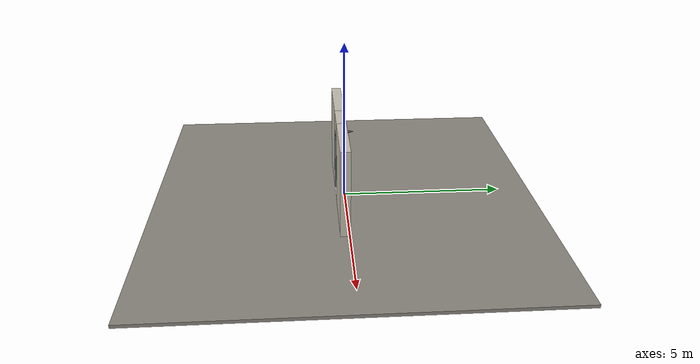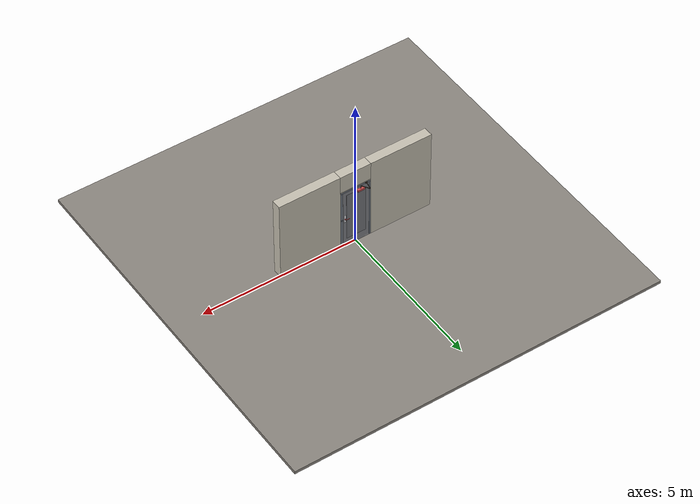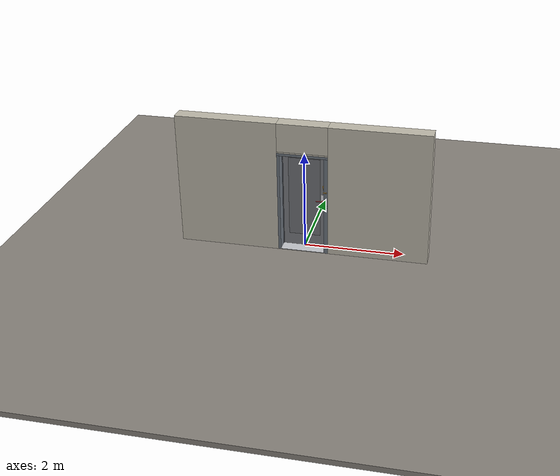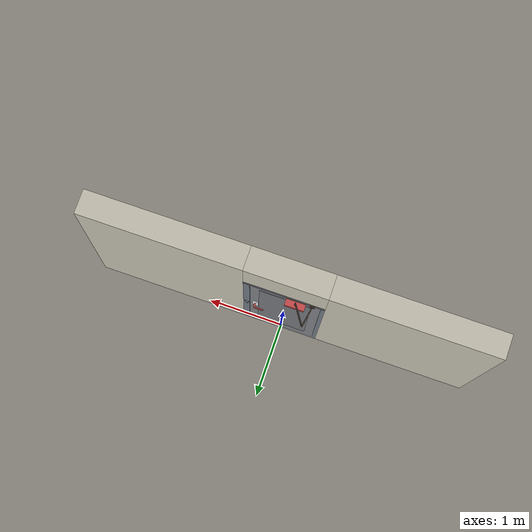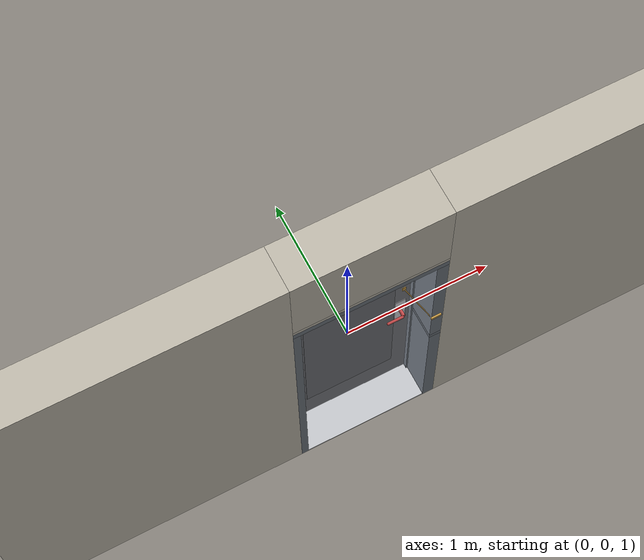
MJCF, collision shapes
<?xml version="1.0" ?>
<mujoco model="db0481_swing_single_full">
  <compiler angle="radian" meshdir="../../hardware" texturedir="../../textures" autolimits="true" inertiafromgeom="false"/>
  <option timestep="0.002" integrator="implicitfast" cone="elliptic" impratio="10" noslip_iterations="3">
    <flag multiccd="enable"/>
  </option>
  <size memory="16M"/>
  <default>
    <geom condim="4" solref="0.005 1" solimp="0.95 0.99 0.001"/>
    <joint solreflimit="0.005 1" solimplimit="0.95 0.99 0.001"/>
    <tendon solreflimit="0.005 1"/>
    <equality solref="0.002 1"/>
  </default>
  <visual>
    <headlight ambient="0.4 0.4 0.4" diffuse="0.7 0.7 0.7" specular="0.2 0.2 0.2"/>
    <quality shadowsize="4096"/>
    <map znear="0.01" zfar="60"/>
  </visual>
  <asset>
    <mesh name="card_reader_38c0bdb077" file="card_reader_38c0bdb077.obj"/>
    <mesh name="closer_body_b226fdb10b" file="closer_body_b226fdb10b.obj"/>
    <mesh name="hinge_e22b26c0c1" file="hinge_e22b26c0c1.obj"/>
    <mesh name="hinge_jamb_e1d088f8dc" file="hinge_jamb_e1d088f8dc.obj"/>
    <mesh name="lever_56c65af20a" file="lever_56c65af20a.obj"/>
    <mesh name="peephole_f829311a59" file="peephole_f829311a59.obj"/>
    <material name="mat_floor" rgba="0.55 0.53 0.5 1" specular="0.2" shininess="0.15" reflectance="0"/>
    <material name="mat_wall" rgba="0.78 0.76 0.7 1" specular="0.2" shininess="0.1" reflectance="0"/>
    <material name="mat_leaf" rgba="0.5 0.51 0.53 1" specular="0.2" shininess="0.61" reflectance="0"/>
    <material name="mat_leaf_panel" rgba="0.46 0.469 0.488 1" specular="0.2" shininess="0.61" reflectance="0"/>
    <material name="mat_hinge" rgba="0.65 0.66 0.68 1" specular="0.74" shininess="0.5" reflectance="0.36"/>
    <material name="mat_op_chrome" rgba="0.9 0.9 0.92 1" specular="0.8" shininess="0.9" reflectance="0.4"/>
    <material name="mat_trim" rgba="0.85 0.66 0.3 1" specular="0.8" shininess="0.75" reflectance="0.4"/>
    <material name="mat_reader" rgba="0.05 0.05 0.05 1" specular="0.38" shininess="0.3" reflectance="0.12"/>
    <material name="mat_bolt" rgba="0.75 0.76 0.77 1" specular="0.8" shininess="0.65" reflectance="0.4"/>
    <material name="mat_chain" rgba="0.85 0.66 0.3 1" specular="0.8" shininess="0.75" reflectance="0.4"/>
    <material name="mat_frame" rgba="0.45 0.48 0.52 1" specular="0.32" shininess="0.6" reflectance="0.08"/>
    <material name="mat_threshold" rgba="0.8 0.81 0.83 1" specular="0.8" shininess="0.6" reflectance="0.4"/>
    <material name="mat_closer" rgba="0.22 0.17 0.13 1" specular="0.8" shininess="0.6" reflectance="0.4"/>
    <material name="mat_peephole" rgba="0.85 0.66 0.3 1" specular="0.8" shininess="0.75" reflectance="0.4"/>
    <texture name="skybox" type="skybox" builtin="gradient" rgb1="0.6 0.7 0.85" rgb2="0.9 0.92 0.95" width="256" height="256"/>
  </asset>
  <worldbody>
    <light name="sun" pos="1.5 -2.5 4" dir="-0.3 0.5 -0.8" directional="true" diffuse="0.8 0.8 0.8" specular="0.3 0.3 0.3" castshadow="true"/>
    <light name="fill" pos="-1.5 2.5 3" dir="0.3 -0.5 -0.7" directional="true" diffuse="0.35 0.35 0.4" castshadow="false"/>
    <camera name="robot_view" pos="0 -2.663187 1.734312" xyaxes="1 0 0 0 0.26963 0.962964" fovy="52"/>
    <camera name="far_view" pos="0 2.421187 1.734312" xyaxes="-1 0 0 0 -0.26963 0.962964" fovy="52"/>
    <camera name="iso" pos="1.932062 -2.256438 2.141063" xyaxes="0.741536 0.670913 0 -0.242917 0.268487 0.932151" fovy="46"/>
    <camera name="detail_handle" pos="0.445 -0.877 1.32" xyaxes="0.97561 0.219512 0 -0.070934 0.315262 0.94635" fovy="38"/>
    <geom name="floor" type="box" size="6 6 0.05" pos="0 0 -0.05" material="mat_floor" group="0" contype="1" conaffinity="1" friction="0.8 0.005 0.0001" density="2400"/>
    <geom name="wall_left" type="box" size="1.007 0.15 1.35" pos="-1.493 -0.121 1.35" material="mat_wall" group="0" contype="1" conaffinity="1" friction="0.6 0.005 0.0001" density="800"/>
    <geom name="wall_right" type="box" size="0.992 0.15 1.35" pos="1.508 -0.121 1.35" material="mat_wall" group="0" contype="1" conaffinity="1" friction="0.6 0.005 0.0001" density="800"/>
    <geom name="wall_header" type="box" size="0.501 0.15 0.2875" pos="0.015 -0.121 2.4125" material="mat_wall" group="0" contype="1" conaffinity="1" friction="0.6 0.005 0.0001" density="800"/>
    <geom name="hinge_0_jamb" type="mesh" mesh="hinge_jamb_e1d088f8dc" pos="-0.433 0.029 0.267" quat="0 1 0 0" material="mat_hinge" group="1" contype="0" conaffinity="0" density="7850"/>
    <geom name="hinge_1_jamb" type="mesh" mesh="hinge_jamb_e1d088f8dc" pos="-0.433 0.029 1.029" quat="0 1 0 0" material="mat_hinge" group="1" contype="0" conaffinity="0" density="7850"/>
    <geom name="hinge_2_jamb" type="mesh" mesh="hinge_jamb_e1d088f8dc" pos="-0.433 0.029 1.861" quat="0 1 0 0" material="mat_hinge" group="1" contype="0" conaffinity="0" density="7850"/>
    <geom name="leaf_chain_track" type="box" size="0.035 0.005 0.01" pos="0.466 -0.276 1.34" material="mat_chain" group="1" contype="0" conaffinity="0" density="8500"/>
    <geom name="jamb_hinge" type="box" size="0.025 0.15 1.0225" pos="-0.461 -0.121 1.0225" material="mat_frame" group="0" contype="1" conaffinity="1" friction="0.6 0.005 0.0001" density="300"/>
    <geom name="strike_1040_wall_n" type="box" size="0.04 0.13075 0.018" pos="0.476 -0.14025 1.04" material="mat_frame" group="0" contype="1" conaffinity="1" friction="0.6 0.005 0.0001" density="300"/>
    <geom name="strike_1040_wall_p" type="box" size="0.04 0.008 0.018" pos="0.476 0.0175 1.04" material="mat_frame" group="0" contype="1" conaffinity="1" friction="0.6 0.005 0.0001" density="300"/>
    <geom name="strike_1040_ramp" type="box" size="0.04 0.018028 0.018" pos="0.479282 0.018312 1.04" quat="0.957092 0 0 -0.289784" material="mat_frame" group="0" contype="1" conaffinity="1" friction="0.12 0.005 0.0001" density="300"/>
    <geom name="strike_1040_back" type="box" size="0.0285 0.0095 0.018" pos="0.4875 0 1.04" material="mat_frame" group="0" contype="1" conaffinity="1" friction="0.6 0.005 0.0001" density="300"/>
    <geom name="jamb_strike_0" type="box" size="0.04 0.15 0.511" pos="0.476 -0.121 0.511" material="mat_frame" group="0" contype="1" conaffinity="1" friction="0.6 0.005 0.0001" density="300"/>
    <geom name="jamb_strike_1" type="box" size="0.04 0.15 0.4935" pos="0.476 -0.121 1.5515" material="mat_frame" group="0" contype="1" conaffinity="1" friction="0.6 0.005 0.0001" density="300"/>
    <geom name="jamb_head" type="box" size="0.501 0.15 0.025" pos="0.015 -0.121 2.07" material="mat_frame" group="0" contype="1" conaffinity="1" friction="0.6 0.005 0.0001" density="300"/>
    <geom name="head_stud" type="box" size="0.501 0.15 0.015" pos="0.015 -0.121 2.11" material="mat_wall" group="0" contype="1" conaffinity="1" friction="0.6 0.005 0.0001" density="500"/>
    <geom name="stop_hinge" type="box" size="0.0055 0.016 1.0225" pos="-0.4305 -0.0385 1.0225" material="mat_frame" group="0" contype="1" conaffinity="1" friction="0.6 0.005 0.0001" density="300"/>
    <geom name="stop_strike" type="box" size="0.0055 0.016 1.0225" pos="0.4305 -0.0385 1.0225" material="mat_frame" group="0" contype="1" conaffinity="1" friction="0.6 0.005 0.0001" density="300"/>
    <geom name="stop_head" type="box" size="0.436 0.016 0.0055" pos="0 -0.0385 2.0395" material="mat_frame" group="0" contype="1" conaffinity="1" friction="0.6 0.005 0.0001" density="300"/>
    <geom name="threshold" type="box" size="0.486 0.15 0.0065" pos="0 -0.121 0.0065" material="mat_threshold" group="0" contype="1" conaffinity="1" friction="0.5 0.005 0.0001" density="2700"/>
    <geom name="closer_bracket" type="box" size="0.03 0.012 0.014" pos="-0.336 0.041 2.075" material="mat_closer" group="1" contype="0" conaffinity="0" density="2700"/>
    <site name="approach_point" pos="0 -1.5 0" quat="1 0 0 0" size="0.05" rgba="0.2 0.9 0.2 0.5" group="4"/>
    <site name="goal_point" pos="0 1.5 0" quat="1 0 0 0" size="0.05" rgba="0.2 0.9 0.2 0.5" group="4"/>
    <site name="door_plane_center" pos="0 0 1.0225" quat="1 0 0 0" size="0.02" rgba="0.2 0.9 0.2 0.5" group="4"/>
    <body name="leaf" pos="-0.436 0 0">
      <inertial pos="0.419471 0.008655 1.153719" mass="56.242153" quat="-0.482133 0.496823 0.511193 0.50931" diaginertia="3.35962441 21.801036635 25.095602622"/>
      <joint name="leaf_hinge" type="hinge" axis="0 0 1" pos="0.003 0.029 0" limited="true" range="0 0.104904" damping="10.204501" frictionloss="0.886524" stiffness="11.681973" springref="-1.849003" armature="0.02"/>
      <geom name="leaf_slab" type="box" size="0.432 0.022 1.012" pos="0.435 0 1.029" material="mat_leaf" group="0" contype="1" conaffinity="1" friction="0.4 0.005 0.0001" density="1"/>
      <geom name="leaf_panel_0_n" type="box" size="0.31696 0.003 0.83008" pos="0.435 -0.025 1.08972" material="mat_leaf_panel" group="1" contype="0" conaffinity="0" density="1"/>
      <geom name="leaf_panel_0_p" type="box" size="0.31696 0.003 0.83008" pos="0.435 0.025 1.08972" material="mat_leaf_panel" group="1" contype="0" conaffinity="0" density="1"/>
      <geom name="hinge_0" type="mesh" mesh="hinge_e22b26c0c1" pos="0.003 0.029 0.267" quat="0 1 0 0" material="mat_hinge" group="1" contype="0" conaffinity="0" density="7850"/>
      <geom name="hinge_1" type="mesh" mesh="hinge_e22b26c0c1" pos="0.003 0.029 1.029" quat="0 1 0 0" material="mat_hinge" group="1" contype="0" conaffinity="0" density="7850"/>
      <geom name="hinge_2" type="mesh" mesh="hinge_e22b26c0c1" pos="0.003 0.029 1.861" quat="0 1 0 0" material="mat_hinge" group="1" contype="0" conaffinity="0" density="7850"/>
      <geom name="leaf_handle_escutcheon_n" type="box" size="0.0375 0.0015 0.13" pos="0.797 -0.0235 1.04" material="mat_op_chrome" group="1" contype="0" conaffinity="0" density="3000"/>
      <geom name="leaf_handle_escutcheon_p" type="box" size="0.0375 0.0015 0.13" pos="0.797 0.0235 1.04" material="mat_op_chrome" group="1" contype="0" conaffinity="0" density="3000"/>
      <geom name="leaf_handle_reader" type="mesh" mesh="card_reader_38c0bdb077" pos="0.797 0.022 1.2" quat="0 0 0.707107 0.707107" material="mat_reader" group="1" contype="0" conaffinity="0" density="2000"/>
      <geom name="leaf_latch_bolt_faceplate" type="box" size="0.0006 0.014 0.028" pos="0.8664 0 1.04" material="mat_bolt" group="1" contype="0" conaffinity="0" density="8500"/>
      <geom name="leaf_chain_plate" type="box" size="0.012 0.002 0.02" pos="0.817 -0.024 1.34" material="mat_chain" group="1" contype="0" conaffinity="0" density="8500"/>
      <geom name="leaf_chain_0" type="capsule" size="0.003 0.022165" pos="0.822167 -0.0505 1.339" quat="0.6902 0.701677 0.176845 0" material="mat_chain" group="1" contype="0" conaffinity="0" density="8500"/>
      <geom name="leaf_chain_1" type="capsule" size="0.003 0.022165" pos="0.8325 -0.0915 1.337" quat="0.6902 0.701677 0.176845 0" material="mat_chain" group="1" contype="0" conaffinity="0" density="8500"/>
      <geom name="leaf_chain_2" type="capsule" size="0.003 0.022165" pos="0.842833 -0.1325 1.335" quat="0.6902 0.701677 0.176845 0" material="mat_chain" group="1" contype="0" conaffinity="0" density="8500"/>
      <geom name="leaf_chain_3" type="capsule" size="0.003 0.022165" pos="0.853167 -0.1735 1.333" quat="0.6902 0.701677 0.176845 0" material="mat_chain" group="1" contype="0" conaffinity="0" density="8500"/>
      <geom name="leaf_chain_4" type="capsule" size="0.003 0.022165" pos="0.8635 -0.2145 1.331" quat="0.6902 0.701677 0.176845 0" material="mat_chain" group="1" contype="0" conaffinity="0" density="8500"/>
      <geom name="leaf_chain_5" type="capsule" size="0.003 0.022165" pos="0.873833 -0.2555 1.329" quat="0.6902 0.701677 0.176845 0" material="mat_chain" group="1" contype="0" conaffinity="0" density="8500"/>
      <geom name="closer_body" type="mesh" mesh="closer_body_b226fdb10b" pos="0.3 0.022 1.944" quat="-0.707107 0.707107 0 0" material="mat_closer" group="1" contype="0" conaffinity="0" density="2000"/>
      <geom name="closer_body_col" type="box" size="0.12 0.04 0.03" pos="0.3 0.062 1.944" material="mat_closer" group="3" contype="1" conaffinity="1" rgba="0.8 0.3 0.3 0.25" friction="0.6 0.005 0.0001" density="2000"/>
      <geom name="closer_pinion_shaft" type="cylinder" size="0.008 0.0655" pos="0.3 0.064 2.0095" material="mat_closer" group="1" contype="0" conaffinity="0" density="2700"/>
      <geom name="peephole" type="mesh" mesh="peephole_f829311a59" pos="0.435 -0.022 1.517" quat="0.707107 0.707107 0 0" material="mat_peephole" group="2" contype="0" conaffinity="0" density="8500"/>
      <site name="leaf_edge_mid" pos="0.867 0 1.012" quat="1 0 0 0" size="0.02" rgba="0.2 0.9 0.2 0.5" group="4"/>
      <body name="leaf_handle" pos="0.797 0 1.04">
        <inertial pos="-0.034904 0 0" mass="0.739068" quat="0.707107 0 0 -0.707107" diaginertia="0.001260094 0.003272501 0.004494637"/>
        <joint name="leaf_handle_hinge" type="hinge" axis="0 -1 0" limited="true" range="0 0.87" damping="0.231314" frictionloss="0.06" stiffness="1.1" springref="-0.454545" armature="0.01"/>
        <geom name="leaf_handle_spindle" type="cylinder" size="0.006 0.034" pos="0 0 0" quat="0.707107 -0.707107 0 0" material="mat_op_chrome" group="1" contype="0" conaffinity="0" density="7850"/>
        <geom name="leaf_handle_lever_n" type="mesh" mesh="lever_56c65af20a" pos="0 -0.022 0" quat="0.707107 0.707107 0 0" material="mat_op_chrome" group="1" contype="0" conaffinity="0" density="3000"/>
        <geom name="leaf_handle_lever_col_n" type="capsule" size="0.0095 0.0505" pos="-0.06 -0.077 0" quat="0.707107 0 -0.707107 0" material="mat_op_chrome" group="3" contype="1" conaffinity="1" rgba="0.8 0.3 0.3 0.25" friction="0.7 0.01 0.0001" density="3000"/>
        <geom name="leaf_handle_hub_col_n" type="cylinder" size="0.012 0.022" pos="0 -0.052 0" quat="0.707107 -0.707107 0 0" material="mat_op_chrome" group="3" contype="1" conaffinity="1" rgba="0.8 0.3 0.3 0.25" friction="0.6 0.005 0.0001" density="3000"/>
        <geom name="leaf_handle_lever_p" type="mesh" mesh="lever_56c65af20a" pos="0 0.022 0" quat="-0.707107 0.707107 0 0" material="mat_op_chrome" group="1" contype="0" conaffinity="0" density="3000"/>
        <geom name="leaf_handle_lever_col_p" type="capsule" size="0.0095 0.0505" pos="-0.06 0.077 0" quat="0.707107 0 -0.707107 0" material="mat_op_chrome" group="3" contype="1" conaffinity="1" rgba="0.8 0.3 0.3 0.25" friction="0.7 0.01 0.0001" density="3000"/>
        <geom name="leaf_handle_hub_col_p" type="cylinder" size="0.012 0.022" pos="0 0.052 0" quat="0.707107 -0.707107 0 0" material="mat_op_chrome" group="3" contype="1" conaffinity="1" rgba="0.8 0.3 0.3 0.25" friction="0.6 0.005 0.0001" density="3000"/>
        <site name="leaf_handle_grip_n" pos="-0.096 -0.077 0" quat="1 0 0 0" size="0.012" rgba="0.2 0.9 0.2 0.5" group="4"/>
        <site name="leaf_handle_grip_p" pos="-0.096 0.077 0" quat="1 0 0 0" size="0.012" rgba="0.2 0.9 0.2 0.5" group="4"/>
      </body>
      <body name="leaf_latch_bolt" pos="0.867 0 1.04">
        <inertial pos="-0.0055 0 0" mass="0.074627" quat="0.92388 -0.382683 0 0" diaginertia="0.000002271 0.000013255 0.000013255"/>
        <joint name="leaf_latch_bolt_slide" type="slide" axis="-1 0 0" limited="true" range="0 0.019" damping="2" frictionloss="0.3" stiffness="550" springref="-0.01" armature="0.1"/>
        <geom name="leaf_latch_bolt_capsule" type="capsule" size="0.008 0.0165" pos="-0.0055 0 0" quat="0.707107 0 0.707107 0" material="mat_bolt" group="0" contype="1" conaffinity="1" friction="0.2 0.005 0.0001" density="8500"/>
      </body>
      <body name="closer_arm_main" pos="0.3 0.064 2.075" quat="0.472212 0 0 0.881485">
        <inertial pos="0.14 0 0" mass="0.12096" quat="1 0 0 0" diaginertia="0.000003588 0.00079128 0.000792852"/>
        <joint name="closer_pinion" type="hinge" axis="0 0 1" limited="false" damping="0.01" armature="0.002"/>
        <geom name="closer_arm_main_geom" type="box" size="0.14 0.008 0.005" pos="0.14 0 0" material="mat_closer" group="1" contype="0" conaffinity="0" density="2700"/>
        <body name="closer_arm_fore" pos="0.28 0 0" quat="-0.371222 0 0 -0.928544">
          <inertial pos="0.128088 0 0" mass="0.076531" quat="1 0 0 0" diaginertia="0.000001771 0.000437665 0.000438201"/>
          <joint name="closer_elbow" type="hinge" axis="0 0 1" limited="false" damping="0.01" armature="0.002"/>
          <geom name="closer_arm_fore_geom" type="box" size="0.1125 0.007 0.004" pos="0.1125 0 0" material="mat_closer" group="1" contype="0" conaffinity="0" density="2700"/>
          <geom name="closer_fore_neck" type="box" size="0.0175 0.003 0.003" pos="0.2425 0 0" material="mat_closer" group="1" contype="0" conaffinity="0" density="2700"/>
          <geom name="closer_fore_pivot" type="cylinder" size="0.005 0.012" pos="0.26 0 0" material="mat_closer" group="1" contype="0" conaffinity="0" density="2700"/>
        </body>
      </body>
    </body>
  </worldbody>
  <tendon>
    <fixed name="leaf_latch_bolt_coupling" limited="true" range="0 10">
      <joint joint="leaf_latch_bolt_slide" coef="1"/>
      <joint joint="leaf_handle_hinge" coef="-0.023457"/>
    </fixed>
  </tendon>
  <equality>
    <connect name="closer_arm_connect" body1="closer_arm_fore" body2="world" anchor="0.26 0 0" active="true"/>
  </equality>
  <contact>
    <exclude body1="closer_arm_main" body2="leaf"/>
    <exclude body1="closer_arm_fore" body2="leaf"/>
    <exclude body1="closer_arm_main" body2="closer_arm_fore"/>
  </contact>
  <sensor>
    <jointpos name="leaf_hinge_pos" joint="leaf_hinge"/>
    <jointvel name="leaf_hinge_vel" joint="leaf_hinge"/>
    <jointpos name="leaf_handle_hinge_pos" joint="leaf_handle_hinge"/>
    <jointvel name="leaf_handle_hinge_vel" joint="leaf_handle_hinge"/>
    <jointpos name="leaf_latch_bolt_slide_pos" joint="leaf_latch_bolt_slide"/>
    <jointvel name="leaf_latch_bolt_slide_vel" joint="leaf_latch_bolt_slide"/>
  </sensor>
</mujoco>
